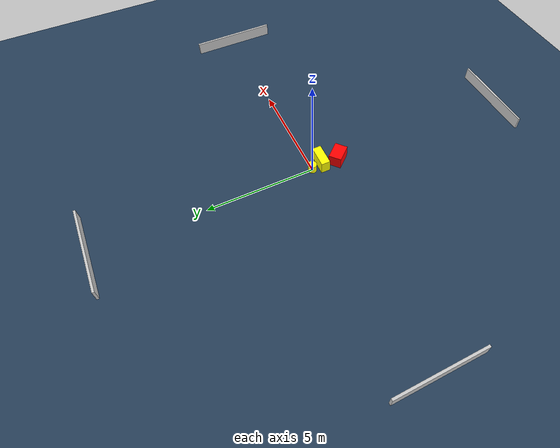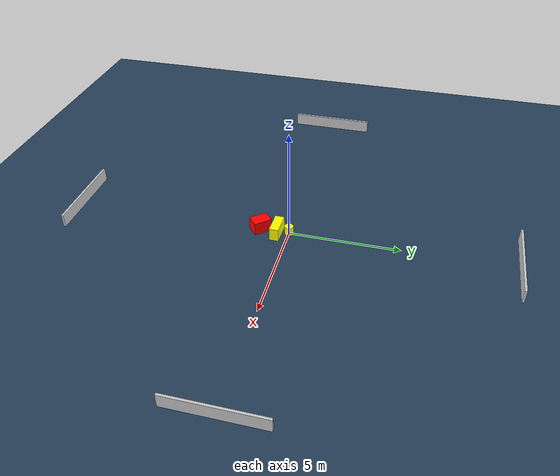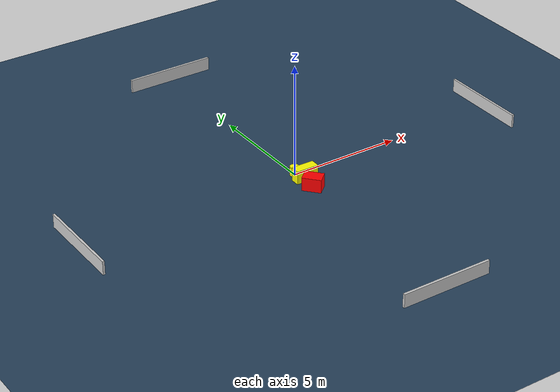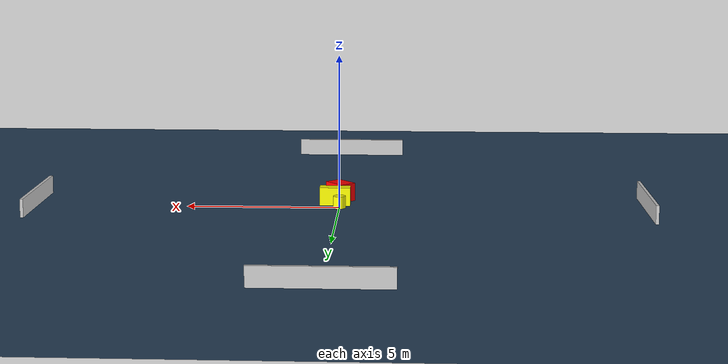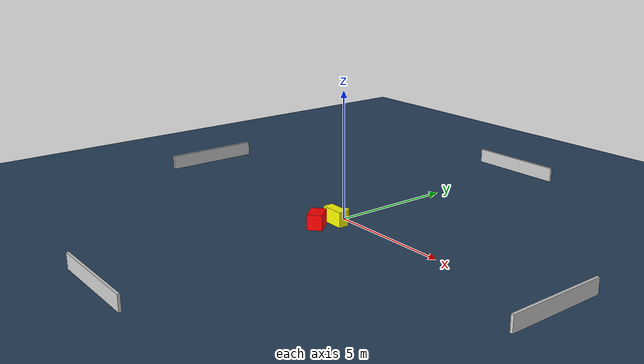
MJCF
<?xml version="1.0" ?>
<mujoco model="generated_environment">
  <option timestep="0.01" integrator="RK4" cone="elliptic"/>
  <default>
    <geom density="1"/>
  </default>
  <asset>
    <texture builtin="gradient" height="3072" name="skybox" rgb1="0.3 0.5 0.7" rgb2="0 0 0" type="skybox" width="512"/>
    <texture builtin="checker" height="300" name="groundplane" rgb1="0.2 0.3 0.4" rgb2="0.1 0.2 0.3" type="2d" width="300"/>
    <material name="groundplane" reflectance="0.2" texrepeat="5 5" texture="groundplane"/>
  </asset>
  <worldbody>
    <light dir="0 0 -1" directional="true" pos="0 0 1.5"/>
    <geom condim="3" friction="0.5 0.005 0.001" material="groundplane" name="floor" pos="0 0 0" size="0 0 0.05" type="plane"/>
    <body name="walls">
      <geom name="wall_1" condim="4" pos="-10.0 0.0 0.3" rgba="0.800000011920929 0.800000011920929 0.800000011920929 1.0" size="0.05 2.0 0.3" type="box"/>
      <geom name="wall_2" condim="4" pos="10.0 0.0 0.3" rgba="0.800000011920929 0.800000011920929 0.800000011920929 1.0" size="0.05 2.0 0.3" type="box"/>
      <geom name="wall_3" condim="4" pos="0.0 -10.0 0.3" rgba="0.800000011920929 0.800000011920929 0.800000011920929 1.0" size="2.0 0.05 0.3" type="box"/>
      <geom name="wall_4" condim="4" pos="0.0 10.0 0.3" rgba="0.800000011920929 0.800000011920929 0.800000011920929 1.0" size="2.0 0.05 0.3" type="box"/>
    </body>
    <body name="robot">
      <joint name="joint_x" type="slide" pos="0 0 0" axis="1 0 0"/>
      <joint name="joint_y" type="slide" pos="0 0 0" axis="0 1 0"/>
      <geom name="robot" type="cylinder" pos="0.0 0.0 0.2" size="0.2 0.2 0.0" mass="5.0" friction="1.0 0.005 0.0001" condim="4" rgba="1.0 1.0 0.0 1.0"/>
    </body>
    <body name="obstacle_1_movable">
      <geom name="obstacle_1_movable" condim="4" pos="0.1631778073742649 -0.5149549729521015 0.3" euler="0 0 88.94967636755759" friction="0.0 0.005 0.001" rgba="1.0 1.0 0.0 1.0" size="0.207610038348934 0.5056867940618575 0.3" type="box" mass="0.1"/>
      <joint type="free"/>
    </body>
    <body name="obstacle_2_static">
      <geom name="obstacle_2_static" condim="4" pos="0.019077435420142227 -1.307051020227137 0.3" euler="0 0 311.0145736788805" friction="0.0 0.005 0.001" rgba="1.0 0.0 0.0 1.0" size="0.41156607415385354 0.2906061044290734 0.3" type="box"/>
    </body>
  </worldbody>
  <actuator>
    <motor name="actuator_x" joint="joint_x" gear="1" ctrlrange="-1 1"/>
    <motor name="actuator_y" joint="joint_y" gear="1" ctrlrange="-1 1"/>
  </actuator>
</mujoco>
